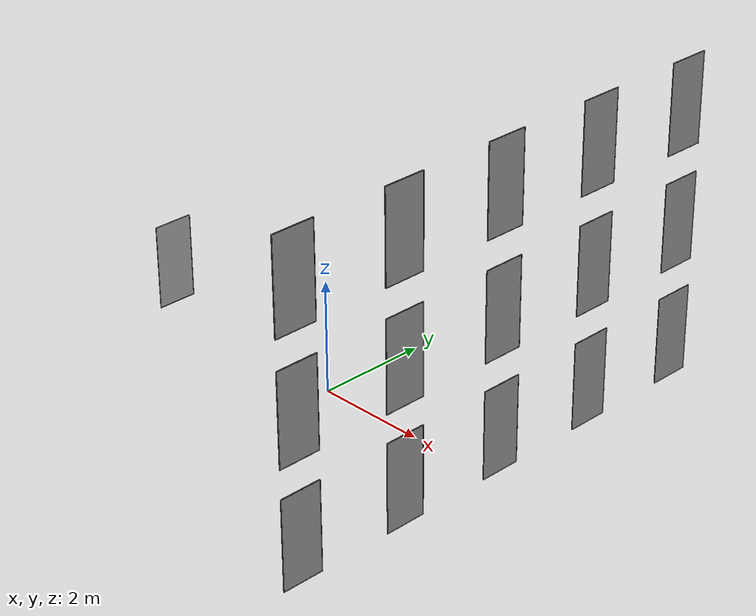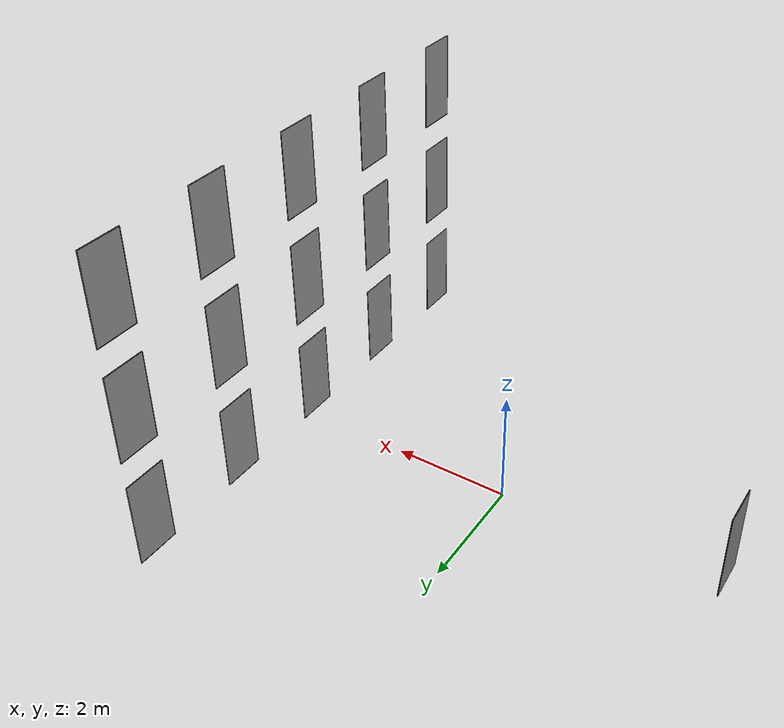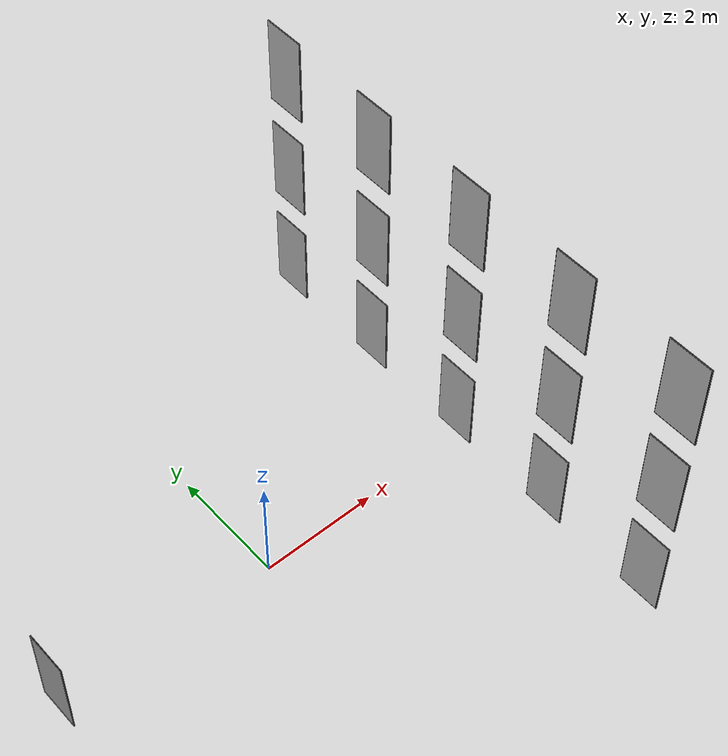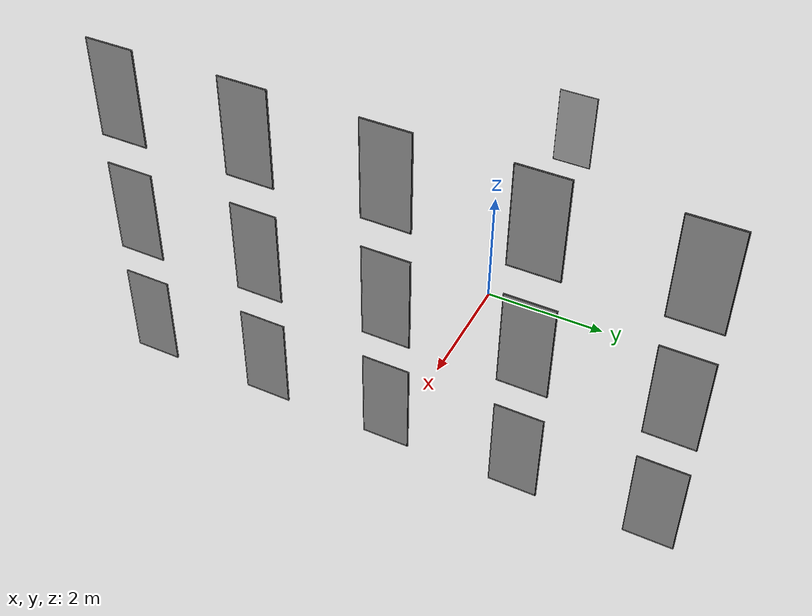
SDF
<sdf version="1.6">
 <world name="default">
  <light name="sun" type="directional">
   <pose>-11.8208 -19.3843 17.2198 0 -0 0</pose>
   <diffuse>0.7 0.7 0.7 1</diffuse>
   <specular>0.2 0.2 0.2 1</specular>
   <attenuation>
    <range>1000</range>
    <constant>0.9</constant>
    <linear>0.01</linear>
    <quadratic>0.001</quadratic>
   </attenuation>
   <direction>0.3698 0.4 -0.5</direction>
  </light>
  <scene><ambient>0.4 0.4 0.4 1</ambient><background>0.7 0.7 0.7 1</background><shadows>1</shadows></scene>
  <gravity>0 0 -9.8</gravity>
  <magnetic_field>6e-06 2.3e-05 -4.2e-05</magnetic_field>
  <atmosphere type="adiabatic"/>
  <physics name="default_physics" default="0" type="ode">
   <max_step_size>0.001</max_step_size>
   <real_time_factor>1</real_time_factor>
   <real_time_update_rate>1000</real_time_update_rate>
  </physics>
  <spherical_coordinates>
   <surface_model>EARTH_WGS84</surface_model>
   <latitude_deg>0</latitude_deg>
   <longitude_deg>0</longitude_deg>
   <elevation>0</elevation>
   <heading_deg>0</heading_deg>
  </spherical_coordinates>
  <model name="stop_poster_0">
   <pose>3.8 -4 3 0 -0 3.14159</pose>
   <static>1</static>
   <link name="stop_poster::body">
    <visual name="stop_poster">
     <geometry><mesh><uri>model://stop_poster/meshes/viz_poster.dae</uri><scale>1 1 1</scale></mesh></geometry>
    </visual>
   </link>
  </model>
  <model name="cat_poster_0">
   <pose>3.8 2 5 0 -0 3.14159</pose>
   <static>1</static>
   <link name="cat_poster::body">
    <visual name="cat_poster">
     <geometry><mesh><uri>model://cat_poster/meshes/viz_poster.dae</uri><scale>1 1 1</scale></mesh></geometry>
    </visual>
   </link>
  </model>
  <model name="cat_poster_1">
   <pose>-3.8 0 1 0 -0 0</pose>
   <static>1</static>
   <link name="cat_poster::body">
    <visual name="cat_poster">
     <geometry><mesh><uri>model://cat_poster/meshes/viz_poster.dae</uri><scale>1 1 1</scale></mesh></geometry>
    </visual>
   </link>
  </model>
  <model name="lightbulb_poster_0">
   <pose>3.8 0 5 0 -0 3.14159</pose>
   <static>1</static>
   <link name="lightbulb_poster::body">
    <visual name="lightbulb_poster">
     <geometry>
      <mesh><uri>model://lightbulb_poster/meshes/viz_poster.dae</uri><scale>1 1 1</scale></mesh>
     </geometry>
    </visual>
   </link>
  </model>
  <model name="book_poster_0">
   <pose>3.8 4 3 0 -0 3.14159</pose>
   <static>1</static>
   <link name="book_poster::body">
    <visual name="book_poster">
     <geometry><mesh><uri>model://book_poster/meshes/viz_poster.dae</uri><scale>1 1 1</scale></mesh></geometry>
    </visual>
   </link>
  </model>
  <model name="book_poster_1">
   <pose>3.8 -4 1 0 -0 3.14159</pose>
   <static>1</static>
   <link name="book_poster::body">
    <visual name="book_poster">
     <geometry><mesh><uri>model://book_poster/meshes/viz_poster.dae</uri><scale>1 1 1</scale></mesh></geometry>
    </visual>
   </link>
  </model>
  <model name="apple_poster_0">
   <pose>3.8 4 5 0 -0 3.14159</pose>
   <static>1</static>
   <link name="apple_poster::body">
    <visual name="apple_poster">
     <geometry><mesh><uri>model://apple_poster/meshes/viz_poster.dae</uri><scale>1 1 1</scale></mesh></geometry>
    </visual>
   </link>
  </model>
  <model name="apple_poster_1">
   <pose>3.8 -2 1 0 -0 3.14159</pose>
   <static>1</static>
   <link name="apple_poster::body">
    <visual name="apple_poster">
     <geometry><mesh><uri>model://apple_poster/meshes/viz_poster.dae</uri><scale>1 1 1</scale></mesh></geometry>
    </visual>
   </link>
  </model>
  <model name="bird_poster_0">
   <pose>3.8 0 1 0 -0 3.14159</pose>
   <static>1</static>
   <link name="bird_poster::body">
    <visual name="bird_poster">
     <geometry><mesh><uri>model://bird_poster/meshes/viz_poster.dae</uri><scale>1 1 1</scale></mesh></geometry>
    </visual>
   </link>
  </model>
  <model name="pencil_poster_0">
   <pose>3.8 0 3 0 -0 3.14159</pose>
   <static>1</static>
   <link name="pencil_poster::body">
    <visual name="pencil_poster">
     <geometry><mesh><uri>model://pencil_poster/meshes/viz_poster.dae</uri><scale>1 1 1</scale></mesh></geometry>
    </visual>
   </link>
  </model>
  <model name="pencil_poster_1">
   <pose>3.8 4 1 0 -0 3.14159</pose>
   <static>1</static>
   <link name="pencil_poster::body">
    <visual name="pencil_poster">
     <geometry><mesh><uri>model://pencil_poster/meshes/viz_poster.dae</uri><scale>1 1 1</scale></mesh></geometry>
    </visual>
   </link>
  </model>
  <model name="clock_poster_0">
   <pose>3.8 -2 5 0 -0 3.14159</pose>
   <static>1</static>
   <link name="clock_poster::body">
    <visual name="clock_poster">
     <geometry><mesh><uri>model://clock_poster/meshes/viz_poster.dae</uri><scale>1 1 1</scale></mesh></geometry>
    </visual>
   </link>
  </model>
  <model name="clock_poster_1">
   <pose>3.8 2 3 0 -0 3.14159</pose>
   <static>1</static>
   <link name="clock_poster::body">
    <visual name="clock_poster">
     <geometry><mesh><uri>model://clock_poster/meshes/viz_poster.dae</uri><scale>1 1 1</scale></mesh></geometry>
    </visual>
   </link>
  </model>
  <model name="person_poster_0">
   <pose>3.8 -2 3 0 -0 3.14159</pose>
   <static>1</static>
   <link name="person_poster::body">
    <visual name="person_poster">
     <geometry><mesh><uri>model://person_poster/meshes/viz_poster.dae</uri><scale>1 1 1</scale></mesh></geometry>
    </visual>
   </link>
  </model>
  <model name="person_poster_1">
   <pose>3.8 2 1 0 -0 3.14159</pose>
   <static>1</static>
   <link name="person_poster::body">
    <visual name="person_poster">
     <geometry><mesh><uri>model://person_poster/meshes/viz_poster.dae</uri><scale>1 1 1</scale></mesh></geometry>
    </visual>
   </link>
  </model>
  <model name="tree_poster_0">
   <pose>3.8 -4 5 0 -0 3.14159</pose>
   <static>1</static>
   <link name="tree_poster::body">
    <visual name="tree_poster">
     <geometry><mesh><uri>model://tree_poster/meshes/viz_poster.dae</uri><scale>1 1 1</scale></mesh></geometry>
    </visual>
   </link>
  </model>
 </world>
</sdf>
